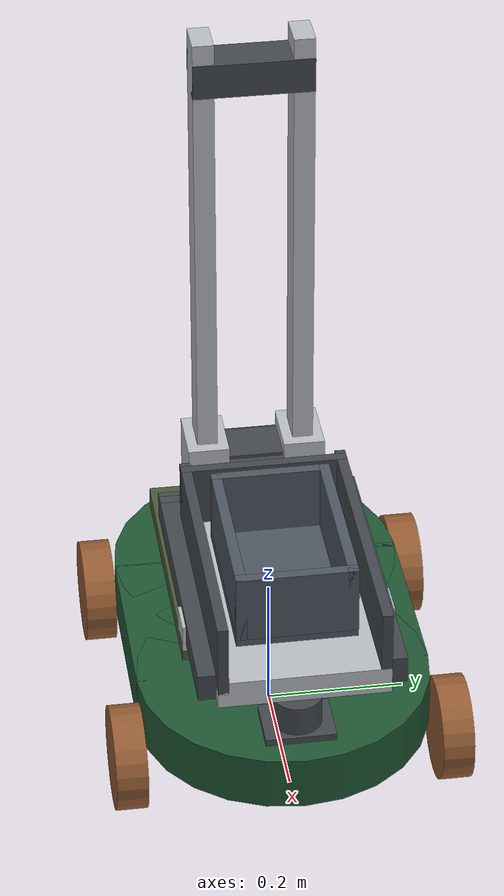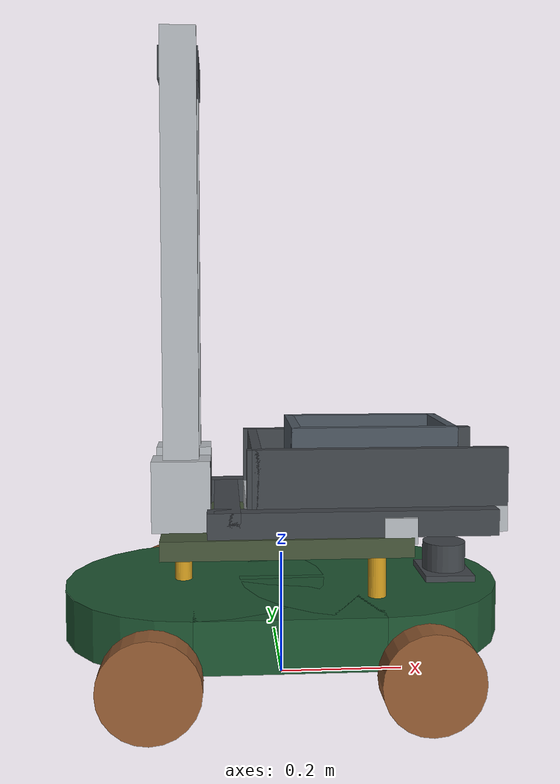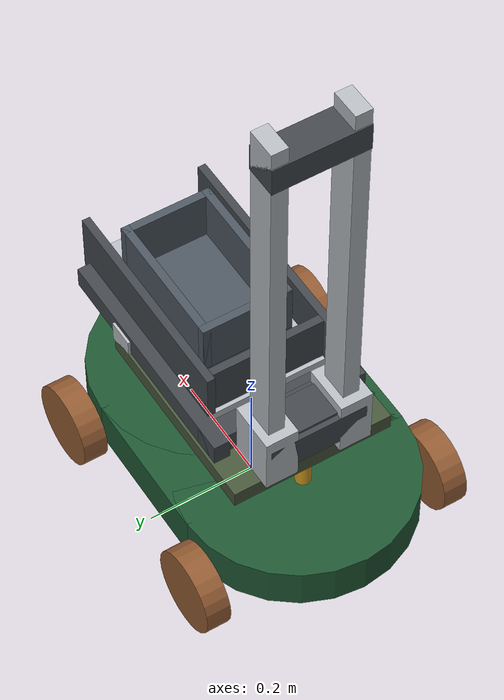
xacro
<?xml version="1.0"?>
<robot xmlns:xacro="http://www.ros.org/wiki/xacro" name="roambot">
  <xacro:arg name="model_name" default="roambot"/>
  <xacro:arg name="frame_prefix" default=""/>
  <xacro:arg name="enable_camera" default="false"/>

  <xacro:property name="model_name" value="$(arg model_name)"/>
  <xacro:property name="frame_prefix" value="$(arg frame_prefix)"/>
  <xacro:property name="enable_camera" value="$(arg enable_camera)"/>

  <!-- Four-wheel chassis: 0.66 m long, 0.51 m wide including the wheels. -->
  <xacro:property name="body_length" value="0.70"/>
  <xacro:property name="body_width" value="0.42"/>
  <xacro:property name="body_height" value="0.08"/>
  <xacro:property name="body_z" value="0.12"/>
  <xacro:property name="body_round_radius" value="${body_width / 2.0}"/>
  <xacro:property name="body_straight_length" value="${body_length - 2.0 * body_round_radius}"/>
  <xacro:property name="body_end_x" value="${body_straight_length / 2.0}"/>

  <xacro:property name="wheel_radius" value="0.075"/>
  <xacro:property name="wheel_width" value="0.045"/>
  <xacro:property name="wheel_y" value="${body_width / 2.0 + wheel_width / 2.0}"/>
  <xacro:property name="front_wheel_x" value="0.20"/>
  <xacro:property name="rear_wheel_x" value="-0.20"/>
  <xacro:property name="wheel_z" value="${-body_z + wheel_radius}"/>

  <xacro:property name="deck_height" value="0.03"/>
  <xacro:property name="pillar_height" value="0.07"/>
  <xacro:property name="pillar_radius" value="0.014"/>

  <!-- Original RoamBot colour palette. -->
  <material name="body_color"><color rgba="0.12 0.34 0.20 1"/></material>
  <material name="deck_color"><color rgba="0.28 0.34 0.23 1"/></material>
  <material name="metal"><color rgba="0.72 0.74 0.76 1"/></material>
  <material name="dark_metal"><color rgba="0.26 0.28 0.30 1"/></material>
  <material name="wheel_color"><color rgba="0.58 0.36 0.20 1"/></material>
  <material name="pillar_gold"><color rgba="0.83 0.62 0.12 1"/></material>
  <material name="camera_lens_silver"><color rgba="0.78 0.80 0.82 1"/></material>
  <material name="tote_color"><color rgba="0.30 0.34 0.38 1"/></material>

  <xacro:macro name="box_inertial" params="mass x y z">
    <inertial>
      <mass value="${mass}"/>
      <origin xyz="0 0 0"/>
      <inertia
        ixx="${mass * (y*y + z*z) / 12.0}" ixy="0" ixz="0"
        iyy="${mass * (x*x + z*z) / 12.0}" iyz="0"
        izz="${mass * (x*x + y*y) / 12.0}"/>
    </inertial>
  </xacro:macro>

  <xacro:macro name="cylinder_inertial" params="mass radius length">
    <inertial>
      <mass value="${mass}"/>
      <origin xyz="0 0 0"/>
      <inertia
        ixx="${mass * (3*radius*radius + length*length) / 12.0}" ixy="0" ixz="0"
        iyy="${mass * (3*radius*radius + length*length) / 12.0}" iyz="0"
        izz="${mass * radius*radius / 2.0}"/>
    </inertial>
  </xacro:macro>

  <link name="base_footprint"/>

  <joint name="base_footprint_joint" type="fixed">
    <parent link="base_footprint"/>
    <child link="base_link"/>
    <origin xyz="0 0 ${body_z}"/>
  </joint>

  <!-- Rounded, longer mobile base. The box and end cylinders form a capsule. -->
  <link name="base_link">
    <visual>
      <geometry><box size="${body_straight_length} ${body_width} ${body_height}"/></geometry>
      <material name="body_color"/>
    </visual>
    <visual>
      <origin xyz="${body_end_x} 0 0"/>
      <geometry><cylinder radius="${body_round_radius}" length="${body_height}"/></geometry>
      <material name="body_color"/>
    </visual>
    <visual>
      <origin xyz="${-body_end_x} 0 0"/>
      <geometry><cylinder radius="${body_round_radius}" length="${body_height}"/></geometry>
      <material name="body_color"/>
    </visual>
    <collision>
      <geometry><box size="${body_straight_length} ${body_width} ${body_height}"/></geometry>
    </collision>
    <collision>
      <origin xyz="${body_end_x} 0 0"/>
      <geometry><cylinder radius="${body_round_radius}" length="${body_height}"/></geometry>
    </collision>
    <collision>
      <origin xyz="${-body_end_x} 0 0"/>
      <geometry><cylinder radius="${body_round_radius}" length="${body_height}"/></geometry>
    </collision>
    <xacro:box_inertial mass="10.0" x="${body_length}" y="${body_width}" z="${body_height}"/>
  </link>

  <!-- Low triangular deck above the chassis. -->
  <link name="upper_deck_link">
    <visual>
      <geometry><box size="0.38 0.30 ${deck_height}"/></geometry>
      <material name="deck_color"/>
    </visual>
    <visual>
      <origin xyz="0.17 0 0.025"/>
      <geometry><box size="0.05 0.30 0.04"/></geometry>
      <material name="metal"/>
    </visual>
    <xacro:box_inertial mass="1.1" x="0.38" y="0.30" z="${deck_height}"/>
  </link>

  <joint name="upper_deck_joint" type="fixed">
    <parent link="base_link"/>
    <child link="upper_deck_link"/>
    <origin xyz="0 0 ${body_height / 2.0 + pillar_height + deck_height / 2.0}"/>
  </joint>

  <xacro:macro name="deck_pillar" params="name x y">
    <link name="${name}_link">
      <visual>
        <geometry><cylinder radius="${pillar_radius}" length="${pillar_height}"/></geometry>
        <material name="pillar_gold"/>
      </visual>
      <xacro:cylinder_inertial mass="0.06" radius="${pillar_radius}" length="${pillar_height}"/>
    </link>
    <joint name="${name}_joint" type="fixed">
      <parent link="base_link"/>
      <child link="${name}_link"/>
      <origin xyz="${x} ${y} ${body_height / 2.0 + pillar_height / 2.0}"/>
    </joint>
  </xacro:macro>

  <xacro:deck_pillar name="front_left_pillar" x="0.14" y="0.11"/>
  <xacro:deck_pillar name="front_right_pillar" x="0.14" y="-0.11"/>
  <xacro:deck_pillar name="rear_pillar" x="-0.16" y="0"/>

  <!--
    Tote carrier chain
    base_link -> lift_mast_link -> lift_carriage_link -> tote_slide_link -> carried_tote_link
    The tray is supported by the carriage, not placed in mid-air.
  -->
  <link name="lift_mast_link">
    <visual>
      <origin xyz="0 0.07 0"/>
      <geometry><box size="0.055 0.030 0.76"/></geometry>
      <material name="metal"/>
    </visual>
    <visual>
      <origin xyz="0 -0.07 0"/>
      <geometry><box size="0.055 0.030 0.76"/></geometry>
      <material name="metal"/>
    </visual>
    <visual>
      <origin xyz="0 0 0.325"/>
      <geometry><box size="0.060 0.17 0.05"/></geometry>
      <material name="dark_metal"/>
    </visual>
    <visual>
      <origin xyz="0 0 -0.325"/>
      <geometry><box size="0.070 0.18 0.07"/></geometry>
      <material name="dark_metal"/>
    </visual>
    <xacro:box_inertial mass="1.8" x="0.07" y="0.18" z="0.76"/>
  </link>

  <joint name="lift_mast_joint" type="fixed">
    <parent link="base_link"/>
    <child link="lift_mast_link"/>
    <origin xyz="-0.16 0 0.52"/>
  </joint>

  <!--
    The carrier starts on the upper-deck surface.  Every carriage and tray
    visual begins at z=0 or above, so no part enters the deck at lift=0.
  -->
  <link name="lift_carriage_link">
    <!-- Two guide shoes visibly lock the carriage to the mast rails. -->
    <visual>
      <origin xyz="0 0.070 0.055"/>
      <geometry><box size="0.090 0.060 0.110"/></geometry>
      <material name="metal"/>
    </visual>
    <visual>
      <origin xyz="0 -0.070 0.055"/>
      <geometry><box size="0.090 0.060 0.110"/></geometry>
      <material name="metal"/>
    </visual>
    <!-- A cross-head joins the guide shoes; it remains part of the mast. -->
    <visual>
      <origin xyz="0 0 0.055"/>
      <geometry><box size="0.090 0.180 0.060"/></geometry>
      <material name="dark_metal"/>
    </visual>
    <!-- Narrow fixed rails support the sliding tray at the same deck level. -->
    <visual>
      <origin xyz="0.260 0.130 0.020"/>
      <geometry><box size="0.440 0.030 0.040"/></geometry>
      <material name="dark_metal"/>
    </visual>
    <visual>
      <origin xyz="0.260 -0.130 0.020"/>
      <geometry><box size="0.440 0.030 0.040"/></geometry>
      <material name="dark_metal"/>
    </visual>
    <visual>
      <origin xyz="0.070 0 0.020"/>
      <geometry><box size="0.040 0.290 0.040"/></geometry>
      <material name="dark_metal"/>
    </visual>
    <xacro:box_inertial mass="1.2" x="0.53" y="0.29" z="0.12"/>
  </link>

  <joint name="lift_joint" type="prismatic">
    <parent link="lift_mast_link"/>
    <child link="lift_carriage_link"/>
    <origin xyz="0 0 -0.38"/>
    <axis xyz="0 0 1"/>
    <limit lower="0.0" upper="0.56" effort="350" velocity="0.18"/>
    <dynamics damping="30" friction="3"/>
  </joint>

  <!-- The tray sits on the same plane as the fixed carriage rails. -->
  <link name="tote_slide_link">
    <visual>
      <origin xyz="0.220 0 0.020"/>
      <geometry><box size="0.400 0.240 0.040"/></geometry>
      <material name="metal"/>
    </visual>
    <visual>
      <origin xyz="0.220 0.1125 0.075"/>
      <geometry><box size="0.400 0.015 0.110"/></geometry>
      <material name="dark_metal"/>
    </visual>
    <visual>
      <origin xyz="0.220 -0.1125 0.075"/>
      <geometry><box size="0.400 0.015 0.110"/></geometry>
      <material name="dark_metal"/>
    </visual>
    <visual>
      <origin xyz="0.035 0 0.075"/>
      <geometry><box size="0.015 0.240 0.110"/></geometry>
      <material name="dark_metal"/>
    </visual>
    <xacro:box_inertial mass="0.8" x="0.400" y="0.240" z="0.13"/>
  </link>

  <joint name="tote_slide_joint" type="prismatic">
    <parent link="lift_carriage_link"/>
    <child link="tote_slide_link"/>
    <origin xyz="0.080 0 0"/>
    <axis xyz="1 0 0"/>
    <limit lower="0.0" upper="0.20" effort="250" velocity="0.14"/>
    <dynamics damping="25" friction="2"/>
  </joint>

  <!-- A neutral tote stays seated on the tray and demonstrates the full mechanism. -->
  <link name="carried_tote_link">
    <visual>
      <origin xyz="0.220 0 0.055"/>
      <geometry><box size="0.26 0.17 0.015"/></geometry>
      <material name="tote_color"/>
    </visual>
    <visual>
      <origin xyz="0.220 0.0775 0.1075"/>
      <geometry><box size="0.26 0.015 0.100"/></geometry>
      <material name="tote_color"/>
    </visual>
    <visual>
      <origin xyz="0.220 -0.0775 0.1075"/>
      <geometry><box size="0.26 0.015 0.100"/></geometry>
      <material name="tote_color"/>
    </visual>
    <visual>
      <origin xyz="0.0975 0 0.1075"/>
      <geometry><box size="0.015 0.17 0.100"/></geometry>
      <material name="tote_color"/>
    </visual>
    <visual>
      <origin xyz="0.3425 0 0.1075"/>
      <geometry><box size="0.015 0.17 0.100"/></geometry>
      <material name="tote_color"/>
    </visual>
    <xacro:box_inertial mass="0.45" x="0.32" y="0.24" z="0.16"/>
  </link>

  <joint name="carried_tote_joint" type="fixed">
    <parent link="tote_slide_link"/>
    <child link="carried_tote_link"/>
  </joint>

  <xacro:macro name="drive_wheel" params="name x y">
    <link name="${name}_wheel_link">
      <visual>
        <origin rpy="${pi / 2.0} 0 0"/>
        <geometry><cylinder radius="${wheel_radius}" length="${wheel_width}"/></geometry>
        <material name="wheel_color"/>
      </visual>
      <collision>
        <origin rpy="${pi / 2.0} 0 0"/>
        <geometry><cylinder radius="${wheel_radius}" length="${wheel_width}"/></geometry>
      </collision>
      <xacro:cylinder_inertial mass="0.65" radius="${wheel_radius}" length="${wheel_width}"/>
    </link>

    <joint name="${name}_wheel_joint" type="continuous">
      <parent link="base_link"/>
      <child link="${name}_wheel_link"/>
      <origin xyz="${x} ${y} ${wheel_z}"/>
      <axis xyz="0 1 0"/>
    </joint>
  </xacro:macro>

  <xacro:drive_wheel name="front_left" x="${front_wheel_x}" y="${wheel_y}"/>
  <xacro:drive_wheel name="front_right" x="${front_wheel_x}" y="${-wheel_y}"/>

  <!-- Rear wheel trims retain the intended four-wheel visual design. -->
  <xacro:macro name="rear_trim_wheel" params="name y">
    <link name="${name}_wheel_link">
      <visual>
        <origin rpy="${pi / 2.0} 0 0"/>
        <geometry><cylinder radius="${wheel_radius}" length="${wheel_width}"/></geometry>
        <material name="wheel_color"/>
      </visual>
      <xacro:cylinder_inertial mass="0.10" radius="${wheel_radius}" length="${wheel_width}"/>
    </link>

    <joint name="${name}_wheel_joint" type="fixed">
      <parent link="base_link"/>
      <child link="${name}_wheel_link"/>
      <origin xyz="${rear_wheel_x} ${y} ${wheel_z}"/>
    </joint>
  </xacro:macro>

  <xacro:rear_trim_wheel name="rear_left" y="${wheel_y}"/>
  <xacro:rear_trim_wheel name="rear_right" y="${-wheel_y}"/>

  <!-- Low-friction support at the rear: the simulated equivalent of a ball caster. -->
  <link name="rear_ball_caster_link">
    <visual>
      <geometry><sphere radius="0.045"/></geometry>
      <material name="dark_metal"/>
    </visual>
    <collision>
      <geometry><sphere radius="0.045"/></geometry>
    </collision>
    <xacro:box_inertial mass="0.15" x="0.09" y="0.09" z="0.09"/>
  </link>

  <joint name="rear_ball_caster_joint" type="fixed">
    <parent link="base_link"/>
    <child link="rear_ball_caster_link"/>
    <origin xyz="-0.25 0 -0.075"/>
  </joint>

  <!-- Simple front-centre lidar pedestal fixed directly to the base. -->
  <link name="lidar_mount_link">
    <visual>
      <origin xyz="-0.02 0 0.0050"/>
      <geometry><box size="0.080 0.100 0.010"/></geometry>
      <material name="dark_metal"/>
    </visual>
    <xacro:box_inertial mass="0.12" x="0.080" y="0.100" z="0.010"/>
  </link>

  <joint name="lidar_mount_joint" type="fixed">
    <parent link="base_link"/>
    <child link="lidar_mount_link"/>
    <origin xyz="0.290 0 ${body_height / 2.0}"/>
  </joint>

  <link name="lidar_link">
    <visual>
      <geometry><cylinder radius="0.035" length="0.045"/></geometry>
      <material name="dark_metal"/>
    </visual>
    <xacro:cylinder_inertial mass="0.12" radius="0.035" length="0.045"/>
  </link>

  <joint name="lidar_joint" type="fixed">
    <parent link="lidar_mount_link"/>
    <child link="lidar_link"/>
    <origin xyz="-0.02 0 0.0325"/>
  </joint>

  <xacro:if value="${enable_camera}">
    <!-- Front-right camera bracket fixed directly to the mobile base. -->
    <link name="camera_mount_link">
      <visual>
        <origin xyz="0.030 0 0.025"/>
        <geometry><box size="0.060 0.080 0.050"/></geometry>
        <material name="dark_metal"/>
      </visual>
      <xacro:box_inertial mass="0.05" x="0.060" y="0.080" z="0.050"/>
    </link>

    <joint name="camera_mount_joint" type="fixed">
      <parent link="base_link"/>
      <child link="camera_mount_link"/>
      <origin xyz="0.320 0 -0.025"/>
    </joint>

    <link name="camera_link">
      <visual><geometry><box size="0.055 0.060 0.040"/></geometry><material name="dark_metal"/></visual>
      <visual>
        <origin xyz="0.033 0 0" rpy="0 ${pi / 2.0} 0"/>
        <geometry><cylinder radius="0.014" length="0.010"/></geometry>
        <material name="camera_lens_silver"/>
      </visual>
      <xacro:box_inertial mass="0.08" x="0.055" y="0.060" z="0.040"/>
    </link>

    <joint name="camera_joint" type="fixed">
      <parent link="camera_mount_link"/>
      <child link="camera_link"/>
      <origin xyz="0.055 0 0.025"/>
    </joint>
  </xacro:if>

  <gazebo reference="front_left_wheel_link"><mu1>1.0</mu1><mu2>0.7</mu2></gazebo>
  <gazebo reference="front_right_wheel_link"><mu1>1.0</mu1><mu2>0.7</mu2></gazebo>
  <gazebo reference="rear_ball_caster_link"><mu1>0.05</mu1><mu2>0.05</mu2></gazebo>

  <gazebo reference="lidar_link">
    <sensor name="lidar_sensor" type="gpu_lidar">
      <topic>/model/${model_name}/scan</topic>
      <update_rate>10</update_rate>
      <always_on>true</always_on>
      <visualize>false</visualize>
      <lidar>
        <scan><horizontal><samples>360</samples><resolution>1</resolution><min_angle>-1.5708</min_angle><max_angle>1.5708</max_angle></horizontal></scan>
        <range><min>0.12</min><max>6.0</max><resolution>0.01</resolution></range>
      </lidar>
    </sensor>
  </gazebo>

  <xacro:if value="${enable_camera}">
    <gazebo reference="camera_link">
      <sensor name="inventory_camera" type="camera">
        <topic>/model/${model_name}/camera/image</topic>
        <update_rate>10</update_rate>
        <always_on>true</always_on>
        <visualize>false</visualize>
        <camera>
          <horizontal_fov>1.047</horizontal_fov>
          <image><width>640</width><height>480</height><format>R8G8B8</format></image>
          <clip><near>0.05</near><far>5.0</far></clip>
          <camera_info_topic>/model/${model_name}/camera/camera_info</camera_info_topic>
        </camera>
      </sensor>
    </gazebo>
  </xacro:if>

  <gazebo>
    <plugin filename="gz-sim-diff-drive-system" name="gz::sim::systems::DiffDrive">
      <left_joint>front_left_wheel_joint</left_joint>
      <right_joint>front_right_wheel_joint</right_joint>
      <wheel_separation>0.465</wheel_separation>
      <wheel_radius>0.075</wheel_radius>
      <topic>/model/${model_name}/cmd_vel</topic>
      <odom_topic>/model/${model_name}/odometry</odom_topic>
      <tf_topic>/model/${model_name}/tf</tf_topic>
      <frame_id>${frame_prefix}odom</frame_id>
      <child_frame_id>${frame_prefix}base_footprint</child_frame_id>
      <odom_publish_frequency>30</odom_publish_frequency>
      <max_linear_velocity>1.0</max_linear_velocity>
      <max_angular_velocity>0.50</max_angular_velocity>
      <max_linear_acceleration>0.70</max_linear_acceleration>
      <max_angular_acceleration>0.50</max_angular_acceleration>
    </plugin>

    <!-- Gazebo commands accept target positions in metres. -->
    <plugin filename="gz-sim-joint-position-controller-system" name="gz::sim::systems::JointPositionController">
      <joint_name>lift_joint</joint_name>
      <topic>/model/${model_name}/lift/cmd_pos</topic>
      <p_gain>180</p_gain><i_gain>0</i_gain><d_gain>8</d_gain>
      <cmd_max>350</cmd_max><cmd_min>-350</cmd_min>
    </plugin>

    <plugin filename="gz-sim-joint-position-controller-system" name="gz::sim::systems::JointPositionController">
      <joint_name>tote_slide_joint</joint_name>
      <topic>/model/${model_name}/tote_slide/cmd_pos</topic>
      <p_gain>150</p_gain><i_gain>0</i_gain><d_gain>7</d_gain>
      <cmd_max>250</cmd_max><cmd_min>-250</cmd_min>
    </plugin>

    <plugin filename="gz-sim-joint-state-publisher-system" name="gz::sim::systems::JointStatePublisher">
      <topic>/model/${model_name}/joint_states</topic>
      <joint_name>front_left_wheel_joint</joint_name>
      <joint_name>front_right_wheel_joint</joint_name>
      <joint_name>lift_joint</joint_name>
      <joint_name>tote_slide_joint</joint_name>
      <update_rate>30</update_rate>
    </plugin>
  </gazebo>
</robot>
